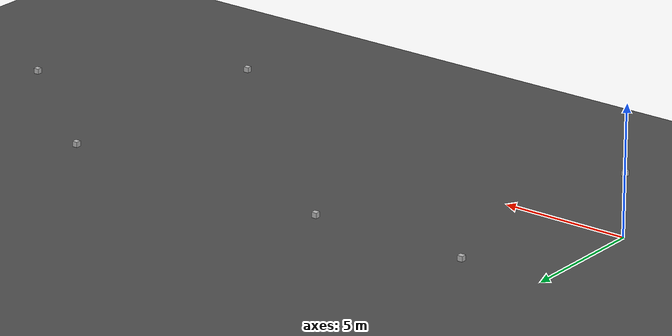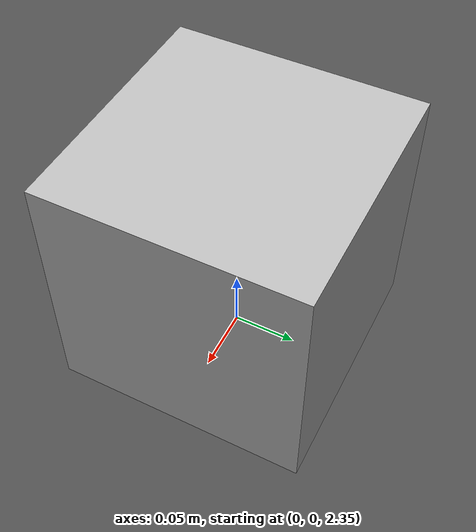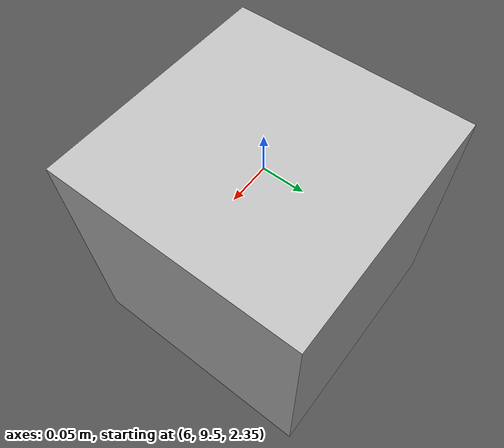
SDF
<sdf version="1.4">
 <world name="default">
  <physics type="ode">
   <max_step_size>0.02</max_step_size>
   <real_time_factor>1</real_time_factor>
   <real_time_update_rate>50</real_time_update_rate>
  </physics>
  <include><uri>model://asphalto_plane</uri></include>
  <include><uri>model://sun</uri></include>
  <model name="uwb_anchor0">
   <pose>0 0 2.44 0 0 0</pose>
   <static>1</static>
   <link name="link">
    <visual name="visual"><geometry><box><size>0.2 0.2 0.2</size></box></geometry></visual>
   </link>
  </model>
  <model name="uwb_anchor1">
   <pose>0 9.58 2.44 0 0 0</pose>
   <static>1</static>
   <link name="link">
    <visual name="visual"><geometry><box><size>0.2 0.2 0.2</size></box></geometry></visual>
   </link>
  </model>
  <model name="uwb_anchor2">
   <pose>16.8 9.58 2.44 0 0 0</pose>
   <static>1</static>
   <link name="link">
    <visual name="visual"><geometry><box><size>0.2 0.2 0.2</size></box></geometry></visual>
   </link>
  </model>
  <model name="uwb_anchor3">
   <pose>16.8 0 2.44 0 0 0</pose>
   <static>1</static>
   <link name="link">
    <visual name="visual"><geometry><box><size>0.2 0.2 0.2</size></box></geometry></visual>
   </link>
  </model>
  <model name="uwb_anchor4">
   <pose>22.8 4.87 2.44 0 0 0</pose>
   <static>1</static>
   <link name="link">
    <visual name="visual"><geometry><box><size>0.2 0.2 0.2</size></box></geometry></visual>
   </link>
  </model>
  <model name="uwb_anchor5">
   <pose>6.1 9.58 2.44 0 0 0</pose>
   <static>1</static>
   <link name="link">
    <visual name="visual"><geometry><box><size>0.2 0.2 0.2</size></box></geometry></visual>
   </link>
  </model>
 </world>
</sdf>

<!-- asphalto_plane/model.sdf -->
<sdf version="1.6">
  <model name="asphalt_plane">
    <link name="link">
      <pose frame="">0 0 0 0 -0 0</pose>
      <inertial>
        <mass>5.4521</mass>
        <pose frame="">0 0 0 0 -0 0</pose>
        <inertia>
          <ixx>7.81026</ixx>
          <ixy>0</ixy>
          <ixz>0</ixz>
          <iyy>46.1744</iyy>
          <iyz>0</iyz>
          <izz>48.5326</izz>
        </inertia>
      </inertial>
      <self_collide>0</self_collide>
      <kinematic>0</kinematic>
      <visual name="visual">
        <cast_shadows>0</cast_shadows>
        <geometry>
          <box>
            <size>80 80 0.1</size>
          </box>
        </geometry>
        <material>
          <script>
            <uri>model://asphalto_plane/materials/scripts</uri>
            <uri>model://asphalto_plane/materials/textures</uri>
            <name>vrc/asphalt</name>
          </script>
          <ambient>0.5 0.5 0.5 1</ambient>
          <diffuse>0.5 0.5 0.5 1</diffuse>
          <specular>0.2 0.2 0.2 1</specular>
          <emissive>0 0 0 1</emissive>
          <shader type="vertex">
            <normal_map>__default__</normal_map>
          </shader>
        </material>
        <pose frame="">0 0 0 0 -0 0</pose>
        <transparency>0</transparency>
      </visual>
      <collision name="collision">
        <laser_retro>0</laser_retro>
        <max_contacts>100</max_contacts>
        <pose frame="">0 0 0 0 -0 0</pose>
        <geometry>
          <box>
            <size>80 80 0.1</size>
          </box>
        </geometry>
        <surface>
          <friction>
            <ode>
              <mu>1</mu>
              <mu2>1</mu2>
              <fdir1>0 0 0</fdir1>
              <slip1>0</slip1>
              <slip2>0</slip2>
            </ode>
            <torsional>
              <coefficient>1</coefficient>
              <patch_radius>0</patch_radius>
              <surface_radius>0</surface_radius>
              <use_patch_radius>1</use_patch_radius>
              <ode>
                <slip>0</slip>
              </ode>
            </torsional>
          </friction>
          <bounce>
            <restitution_coefficient>0</restitution_coefficient>
            <threshold>1e+06</threshold>
          </bounce>
          <contact>
            <collide_without_contact>0</collide_without_contact>
            <collide_without_contact_bitmask>1</collide_without_contact_bitmask>
            <collide_bitmask>1</collide_bitmask>
            <ode>
              <soft_cfm>0</soft_cfm>
              <soft_erp>0.2</soft_erp>
              <kp>1e+13</kp>
              <kd>1</kd>
              <max_vel>0.00</max_vel>
              <min_depth>0.000</min_depth>
            </ode>
            <bullet>
              <split_impulse>1</split_impulse>
              <split_impulse_penetration_threshold>-0.01</split_impulse_penetration_threshold>
              <soft_cfm>0</soft_cfm>
              <soft_erp>0.2</soft_erp>
              <kp>1e+13</kp>
              <kd>1</kd>
            </bullet>
          </contact>
        </surface>
      </collision>
    </link>
    <static>1</static>
    <allow_auto_disable>1</allow_auto_disable>
  </model>
</sdf>
